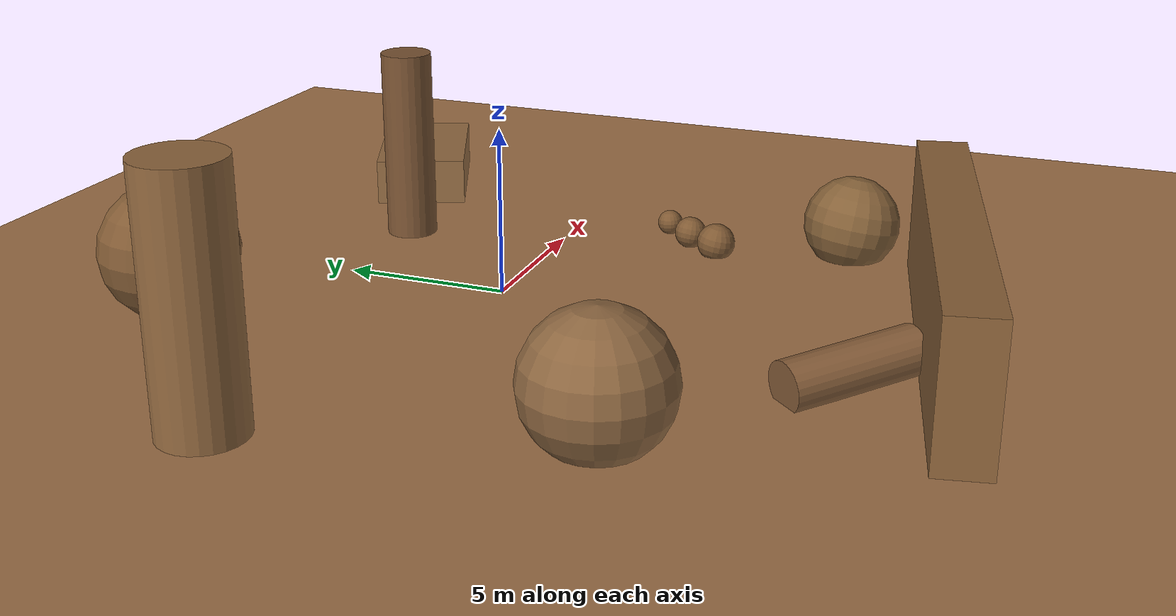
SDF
<?xml version="1.0" ?>
<sdf version="1.9">
  <world name="planetary_landing">

    <!-- Required system plugins -->
    <plugin filename="gz-sim-physics-system"
            name="gz::sim::systems::Physics"/>
    <plugin filename="gz-sim-user-commands-system"
            name="gz::sim::systems::UserCommands"/>
    <plugin filename="gz-sim-scene-broadcaster-system"
            name="gz::sim::systems::SceneBroadcaster"/>
    <plugin filename="gz-sim-sensors-system"
            name="gz::sim::systems::Sensors">
      <render_engine>ogre2</render_engine>
    </plugin>
    <plugin filename="gz-sim-contact-system"
            name="gz::sim::systems::Contact"/>

    <!-- Phase 26: Mars-like sun, low angle, harsh shadows -->
    <light name="sun" type="directional">
      <cast_shadows>true</cast_shadows>
      <pose>0 0 100 0 0.4 0.4</pose>
      <diffuse>0.9 0.8 0.7 1</diffuse>
      <specular>0.3 0.3 0.3 1</specular>
      <direction>-0.5 0.2 -0.8</direction>
    </light>

    <!-- Mars atmosphere: dim ambient, orange sky -->
    <scene>
      <ambient>0.3 0.2 0.15 1</ambient>
      <background>0.55 0.35 0.2 1</background>
      <grid>false</grid>
      <shadows>true</shadows>
    </scene>

    <!-- Phase 26: Ground plane — solid Mars color, grid disabled -->
    <model name="ground_plane">
      <static>true</static>
      <link name="link">
        <collision name="collision">
          <geometry>
            <plane>
              <normal>0 0 1</normal>
              <size>500 500</size>
            </plane>
          </geometry>
        </collision>
        <visual name="visual">
          <geometry>
            <plane>
              <normal>0 0 1</normal>
              <size>500 500</size>
            </plane>
          </geometry>
          <material>
            <ambient>0.55 0.38 0.22 1</ambient>
            <diffuse>0.62 0.44 0.28 1</diffuse>
            <specular>0.05 0.05 0.05 1</specular>
          </material>
        </visual>
      </link>
    </model>

    <!-- Phase 27: 11 scaled obstacles (3-7m tall for visibility at 5m drone height) -->

    <!-- Boulder 1: large ellipsoid -->
    <model name="boulder_1">
      <static>true</static>
      <pose>-8 -6 1.5 0 0 0</pose>
      <link name="link">
        <collision name="collision">
          <geometry><sphere><radius>2.0</radius></sphere></geometry>
        </collision>
        <visual name="visual">
          <geometry><sphere><radius>2.0</radius></sphere></geometry>
          <material><ambient>0.5 0.35 0.2 1</ambient><diffuse>0.55 0.4 0.25 1</diffuse></material>
        </visual>
      </link>
    </model>

    <!-- Boulder 2: elongated ellipsoid (approximated with scaled sphere) -->
    <model name="boulder_2">
      <static>true</static>
      <pose>7 -9 1.0 0.2 0.1 0.5</pose>
      <link name="link">
        <collision name="collision">
          <geometry><sphere><radius>1.5</radius></sphere></geometry>
        </collision>
        <visual name="visual">
          <geometry><sphere><radius>1.5</radius></sphere></geometry>
          <material><ambient>0.48 0.33 0.18 1</ambient><diffuse>0.52 0.38 0.22 1</diffuse></material>
        </visual>
      </link>
    </model>

    <!-- Large sphere -->
    <model name="sphere_large">
      <static>true</static>
      <pose>-5 8 2.0 0 0 0</pose>
      <link name="link">
        <collision name="collision">
          <geometry><sphere><radius>2.0</radius></sphere></geometry>
        </collision>
        <visual name="visual">
          <geometry><sphere><radius>2.0</radius></sphere></geometry>
          <material><ambient>0.45 0.30 0.18 1</ambient><diffuse>0.50 0.35 0.20 1</diffuse></material>
        </visual>
      </link>
    </model>

    <!-- Spire cylinder: r=0.8, h=6m -->
    <model name="spire">
      <static>true</static>
      <pose>4 5 3.0 0 0 0</pose>
      <link name="link">
        <collision name="collision">
          <geometry><cylinder><radius>0.8</radius><length>6.0</length></cylinder></geometry>
        </collision>
        <visual name="visual">
          <geometry><cylinder><radius>0.8</radius><length>6.0</length></cylinder></geometry>
          <material><ambient>0.42 0.28 0.16 1</ambient><diffuse>0.48 0.33 0.20 1</diffuse></material>
        </visual>
      </link>
    </model>

    <!-- Pillar cylinder: r=1.2, h=7m -->
    <model name="pillar">
      <static>true</static>
      <pose>-11 3 3.5 0 0 0</pose>
      <link name="link">
        <collision name="collision">
          <geometry><cylinder><radius>1.2</radius><length>7.0</length></cylinder></geometry>
        </collision>
        <visual name="visual">
          <geometry><cylinder><radius>1.2</radius><length>7.0</length></cylinder></geometry>
          <material><ambient>0.50 0.34 0.20 1</ambient><diffuse>0.56 0.40 0.24 1</diffuse></material>
        </visual>
      </link>
    </model>

    <!-- Flat slab: 5x3x1.5m -->
    <model name="slab">
      <static>true</static>
      <pose>9 7 0.75 0 0 0.4</pose>
      <link name="link">
        <collision name="collision">
          <geometry><box><size>5.0 3.0 1.5</size></box></geometry>
        </collision>
        <visual name="visual">
          <geometry><box><size>5.0 3.0 1.5</size></box></geometry>
          <material><ambient>0.52 0.36 0.22 1</ambient><diffuse>0.58 0.42 0.26 1</diffuse></material>
        </visual>
      </link>
    </model>

    <!-- Tilted fallen cylinder -->
    <model name="fallen_cylinder">
      <static>true</static>
      <pose>-3 -11 0.6 1.5 0.3 0.8</pose>
      <link name="link">
        <collision name="collision">
          <geometry><cylinder><radius>0.7</radius><length>4.0</length></cylinder></geometry>
        </collision>
        <visual name="visual">
          <geometry><cylinder><radius>0.7</radius><length>4.0</length></cylinder></geometry>
          <material><ambient>0.46 0.31 0.18 1</ambient><diffuse>0.52 0.36 0.22 1</diffuse></material>
        </visual>
      </link>
    </model>

    <!-- Rock wall / ridge: 14x1.5x4m -->
    <model name="rock_wall">
      <static>true</static>
      <pose>0 -13 2.0 0 0 0.2</pose>
      <link name="link">
        <collision name="collision">
          <geometry><box><size>14.0 1.5 4.0</size></box></geometry>
        </collision>
        <visual name="visual">
          <geometry><box><size>14.0 1.5 4.0</size></box></geometry>
          <material><ambient>0.48 0.32 0.18 1</ambient><diffuse>0.54 0.38 0.22 1</diffuse></material>
        </visual>
      </link>
    </model>

    <!-- Small rock cluster 1 -->
    <model name="small_rock_1">
      <static>true</static>
      <pose>6 -4 0.4 0.1 0.2 0.0</pose>
      <link name="link">
        <collision name="collision">
          <geometry><sphere><radius>0.5</radius></sphere></geometry>
        </collision>
        <visual name="visual">
          <geometry><sphere><radius>0.5</radius></sphere></geometry>
          <material><ambient>0.44 0.30 0.17 1</ambient><diffuse>0.50 0.35 0.20 1</diffuse></material>
        </visual>
      </link>
    </model>

    <!-- Small rock cluster 2 -->
    <model name="small_rock_2">
      <static>true</static>
      <pose>7 -3 0.3 0.0 0.1 1.0</pose>
      <link name="link">
        <collision name="collision">
          <geometry><sphere><radius>0.4</radius></sphere></geometry>
        </collision>
        <visual name="visual">
          <geometry><sphere><radius>0.4</radius></sphere></geometry>
          <material><ambient>0.44 0.30 0.17 1</ambient><diffuse>0.50 0.35 0.20 1</diffuse></material>
        </visual>
      </link>
    </model>

    <!-- Small rock cluster 3 -->
    <model name="small_rock_3">
      <static>true</static>
      <pose>5.5 -5 0.35 0.2 0.0 0.5</pose>
      <link name="link">
        <collision name="collision">
          <geometry><sphere><radius>0.6</radius></sphere></geometry>
        </collision>
        <visual name="visual">
          <geometry><sphere><radius>0.6</radius></sphere></geometry>
          <material><ambient>0.44 0.30 0.17 1</ambient><diffuse>0.50 0.35 0.20 1</diffuse></material>
        </visual>
      </link>
    </model>

  </world>
</sdf>
